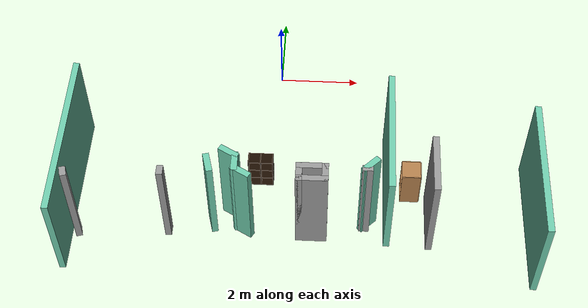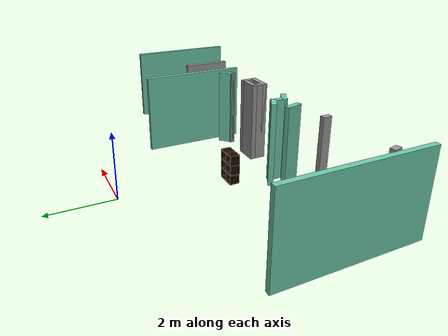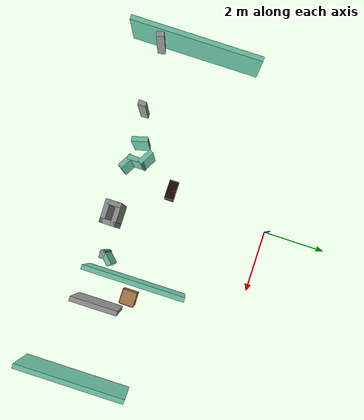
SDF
<sdf version="1.6">
 <world name="default">
  <model name="map_3">
   <pose>0.639107 -0.355311 0 0 -0 0</pose>
   <link name="Wall_125">
    <collision name="Wall_125_Collision">
     <geometry><box><size>0.5 0.15 2.5</size></box></geometry>
     <pose>0 0 1.25 0 -0 0</pose>
    </collision>
    <visual name="Wall_125_Visual">
     <pose>0 0 1.25 0 -0 0</pose>
     <geometry><box><size>0.5 0.15 2.5</size></box></geometry>
     <material>
      <script><uri>file://media/materials/scripts/gazebo.material</uri><name>Gazebo/Grey</name></script>
      <ambient>1 1 1 1</ambient>
     </material>
     <meta><layer>0</layer></meta>
    </visual>
    <pose>0.031075 -4.44181 0 0 -0 -1.5708</pose>
   </link>
   <link name="Wall_126">
    <collision name="Wall_126_Collision">
     <geometry><box><size>0.75 0.15 2.5</size></box></geometry>
     <pose>0 0 1.25 0 -0 0</pose>
    </collision>
    <visual name="Wall_126_Visual">
     <pose>0 0 1.25 0 -0 0</pose>
     <geometry><box><size>0.75 0.15 2.5</size></box></geometry>
     <material>
      <script><uri>file://media/materials/scripts/gazebo.material</uri><name>Gazebo/Grey</name></script>
      <ambient>1 1 1 1</ambient>
     </material>
     <meta><layer>0</layer></meta>
    </visual>
    <pose>0.331075 -4.61681 0 0 -0 0</pose>
   </link>
   <link name="Wall_127">
    <collision name="Wall_127_Collision">
     <geometry><box><size>0.5 0.15 2.5</size></box></geometry>
     <pose>0 0 1.25 0 -0 0</pose>
    </collision>
    <visual name="Wall_127_Visual">
     <pose>0 0 1.25 0 -0 0</pose>
     <geometry><box><size>0.5 0.15 2.5</size></box></geometry>
     <material>
      <script><uri>file://media/materials/scripts/gazebo.material</uri><name>Gazebo/Grey</name></script>
      <ambient>1 1 1 1</ambient>
     </material>
     <meta><layer>0</layer></meta>
    </visual>
    <pose>0.631075 -4.44181 0 0 -0 1.5708</pose>
   </link>
   <link name="Wall_128">
    <collision name="Wall_128_Collision">
     <geometry><box><size>0.75 0.15 2.5</size></box></geometry>
     <pose>0 0 1.25 0 -0 0</pose>
    </collision>
    <visual name="Wall_128_Visual">
     <pose>0 0 1.25 0 -0 0</pose>
     <geometry><box><size>0.75 0.15 2.5</size></box></geometry>
     <material>
      <script><uri>file://media/materials/scripts/gazebo.material</uri><name>Gazebo/Grey</name></script>
      <ambient>1 1 1 1</ambient>
     </material>
     <meta><layer>0</layer></meta>
    </visual>
    <pose>0.331075 -4.26681 0 0 -0 3.14159</pose>
   </link>
   <link name="Wall_130">
    <collision name="Wall_130_Collision">
     <geometry><box><size>1.5 0.15 2.5</size></box></geometry>
     <pose>0 0 1.25 0 -0 0</pose>
    </collision>
    <visual name="Wall_130_Visual">
     <pose>0 0 1.25 0 -0 0</pose>
     <geometry><box><size>1.5 0.15 2.5</size></box></geometry>
     <material>
      <script><uri>file://media/materials/scripts/gazebo.material</uri><name>Gazebo/Grey</name></script>
      <ambient>1 1 1 1</ambient>
     </material>
     <meta><layer>0</layer></meta>
    </visual>
    <pose>3.15108 -4.06181 0 0 -0 -1.5708</pose>
   </link>
   <link name="Wall_134">
    <collision name="Wall_134_Collision">
     <geometry><box><size>0.25 0.15 2.5</size></box></geometry>
     <pose>0 0 1.25 0 -0 0</pose>
    </collision>
    <visual name="Wall_134_Visual">
     <pose>0 0 1.25 0 -0 0</pose>
     <geometry><box><size>0.25 0.15 2.5</size></box></geometry>
     <material>
      <script><uri>file://media/materials/scripts/gazebo.material</uri><name>Gazebo/Grey</name></script>
      <ambient>1 1 1 1</ambient>
     </material>
     <meta><layer>0</layer></meta>
    </visual>
    <pose>-3.10893 -4.55681 0 0 -0 -1.5708</pose>
   </link>
   <link name="Wall_144">
    <collision name="Wall_144_Collision">
     <geometry><box><size>0.25 0.15 2.5</size></box></geometry>
     <pose>0 0 1.25 0 -0 0</pose>
    </collision>
    <visual name="Wall_144_Visual">
     <pose>0 0 1.25 0 -0 0</pose>
     <geometry><box><size>0.25 0.15 2.5</size></box></geometry>
     <material>
      <script><uri>file://media/materials/scripts/gazebo.material</uri><name>Gazebo/Grey</name></script>
      <ambient>1 1 1 1</ambient>
     </material>
     <meta><layer>0</layer></meta>
    </visual>
    <pose>-5.28923 -4.6894 0 0 -0 -1.309</pose>
   </link>
   <link name="Wall_62">
    <collision name="Wall_62_Collision">
     <geometry><box><size>4.25 0.15 2.5</size></box></geometry>
     <pose>0 0 1.25 0 -0 0</pose>
    </collision>
    <visual name="Wall_62_Visual">
     <pose>0 0 1.25 0 -0 0</pose>
     <geometry><box><size>4.25 0.15 2.5</size></box></geometry>
     <material>
      <script><uri>file://media/materials/scripts/gazebo.material</uri><name>Gazebo/Grey</name></script>
      <ambient>0.435294 0.796078 0.67451 1</ambient>
     </material>
     <meta><layer>0</layer></meta>
    </visual>
    <pose>-5.50979 -3.58401 0 0 -0 -1.5708</pose>
   </link>
   <link name="Wall_67">
    <collision name="Wall_67_Collision">
     <geometry><box><size>0.5 0.15 2.5</size></box></geometry>
     <pose>0 0 1.25 0 -0 0</pose>
    </collision>
    <visual name="Wall_67_Visual">
     <pose>0 0 1.25 0 -0 0</pose>
     <geometry><box><size>0.5 0.15 2.5</size></box></geometry>
     <material>
      <script><uri>file://media/materials/scripts/gazebo.material</uri><name>Gazebo/Grey</name></script>
      <ambient>0.435294 0.796078 0.67451 1</ambient>
     </material>
     <meta><layer>0</layer></meta>
    </visual>
    <pose>-2.05198 -4.28997 0 0 -0 1.8326</pose>
   </link>
   <link name="Wall_71">
    <collision name="Wall_71_Collision">
     <geometry><box><size>0.5 0.15 2.5</size></box></geometry>
     <pose>0 0 1.25 0 -0 0</pose>
    </collision>
    <visual name="Wall_71_Visual">
     <pose>0 0 1.25 0 -0 0</pose>
     <geometry><box><size>0.5 0.15 2.5</size></box></geometry>
     <material>
      <script><uri>file://media/materials/scripts/gazebo.material</uri><name>Gazebo/Grey</name></script>
      <ambient>0.435294 0.796078 0.67451 1</ambient>
     </material>
     <meta><layer>0</layer></meta>
    </visual>
    <pose>-1.59572 -3.95843 0 0 -0 -0.523599</pose>
   </link>
   <link name="Wall_72">
    <collision name="Wall_72_Collision">
     <geometry><box><size>0.5 0.15 2.5</size></box></geometry>
     <pose>0 0 1.25 0 -0 0</pose>
    </collision>
    <visual name="Wall_72_Visual">
     <pose>0 0 1.25 0 -0 0</pose>
     <geometry><box><size>0.5 0.15 2.5</size></box></geometry>
     <material>
      <script><uri>file://media/materials/scripts/gazebo.material</uri><name>Gazebo/Grey</name></script>
      <ambient>0.435294 0.796078 0.67451 1</ambient>
     </material>
     <meta><layer>0</layer></meta>
    </visual>
    <pose>-1.44416 -4.22093 0 0 -0 -1.5708</pose>
   </link>
   <link name="Wall_73">
    <collision name="Wall_73_Collision">
     <geometry><box><size>0.5 0.15 2.5</size></box></geometry>
     <pose>0 0 1.25 0 -0 0</pose>
    </collision>
    <visual name="Wall_73_Visual">
     <pose>0 0 1.25 0 -0 0</pose>
     <geometry><box><size>0.5 0.15 2.5</size></box></geometry>
     <material>
      <script><uri>file://media/materials/scripts/gazebo.material</uri><name>Gazebo/Grey</name></script>
      <ambient>0.435294 0.796078 0.67451 1</ambient>
     </material>
     <meta><layer>0</layer></meta>
    </visual>
    <pose>-1.29261 -4.48343 0 0 -0 -0.523599</pose>
   </link>
   <link name="Wall_82">
    <collision name="Wall_82_Collision">
     <geometry><box><size>0.25 0.15 2.5</size></box></geometry>
     <pose>0 0 1.25 0 -0 0</pose>
    </collision>
    <visual name="Wall_82_Visual">
     <pose>0 0 1.25 0 -0 0</pose>
     <geometry><box><size>0.25 0.15 2.5</size></box></geometry>
     <material>
      <script><uri>file://media/materials/scripts/gazebo.material</uri><name>Gazebo/Grey</name></script>
      <ambient>1 1 1 1</ambient>
     </material>
     <meta><layer>0</layer></meta>
    </visual>
    <pose>1.59273 -4.2877 0 0 -0 3.14159</pose>
   </link>
   <link name="Wall_83">
    <collision name="Wall_83_Collision">
     <geometry><box><size>0.5 0.15 2.5</size></box></geometry>
     <pose>0 0 1.25 0 -0 0</pose>
    </collision>
    <visual name="Wall_83_Visual">
     <pose>0 0 1.25 0 -0 0</pose>
     <geometry><box><size>0.5 0.15 2.5</size></box></geometry>
     <material>
      <script><uri>file://media/materials/scripts/gazebo.material</uri><name>Gazebo/Grey</name></script>
      <ambient>0.435294 0.796078 0.67451 1</ambient>
     </material>
     <meta><layer>0</layer></meta>
    </visual>
    <pose>1.66647 -4.16395 0 0 -0 0.785398</pose>
   </link>
   <link name="Wall_91">
    <collision name="Wall_91_Collision">
     <geometry><box><size>3.25 0.15 2.5</size></box></geometry>
     <pose>0 0 1.25 0 -0 0</pose>
    </collision>
    <visual name="Wall_91_Visual">
     <pose>0 0 1.25 0 -0 0</pose>
     <geometry><box><size>3.25 0.15 2.5</size></box></geometry>
     <material>
      <script><uri>file://media/materials/scripts/gazebo.material</uri><name>Gazebo/Grey</name></script>
      <ambient>0.435294 0.796078 0.67451 1</ambient>
     </material>
     <meta><layer>0</layer></meta>
    </visual>
    <pose>2.14022 -3.14021 0 0 -0 -1.5708</pose>
   </link>
   <link name="Wall_98">
    <collision name="Wall_98_Collision">
     <geometry><box><size>3.5 0.15 2.5</size></box></geometry>
     <pose>0 0 1.25 0 -0 0</pose>
    </collision>
    <visual name="Wall_98_Visual">
     <pose>0 0 1.25 0 -0 0</pose>
     <geometry><box><size>3.5 0.15 2.5</size></box></geometry>
     <material>
      <script><uri>file://media/materials/scripts/gazebo.material</uri><name>Gazebo/Grey</name></script>
      <ambient>0.435294 0.796078 0.67451 1</ambient>
     </material>
     <meta><layer>0</layer></meta>
    </visual>
    <pose>5.57626 -4.05239 0 0 -0 1.5708</pose>
   </link>
   <static>1</static>
  </model>
  <model name="6_Cube_StorageE_0">
   <link name="Wall_0">
    <pose>0 0 0.01 0 -0 0</pose>
    <inertial>
     <mass>1.6201</mass>
     <inertia><ixx>0.0119</ixx><iyy>0.0631</iyy><izz>0.0513</izz><ixy>0</ixy><ixz>0</ixz><iyz>0</iyz></inertia>
    </inertial>
    <collision name="Wall_0_Collision"><geometry><box><size>0.616 0.296 0.02</size></box></geometry></collision>
    <visual name="Wall_0_Visual">
     <geometry><box><size>0.616 0.296 0.02</size></box></geometry>
     <material>
      <script><uri>file://media/materials/scripts/gazebo.material</uri><name>Gazebo/Grey</name></script>
      <ambient>0.105882 0.0509804 0 1</ambient>
     </material>
    </visual>
   </link>
   <joint name="0_2" type="fixed">
    <pose>-0.308 0 0 0 -0 0</pose>
    <parent>Wall_2</parent>
    <child>Wall_0</child>
    <axis>
     <xyz>1 0 0</xyz>
     <use_parent_model_frame>0</use_parent_model_frame>
     <limit><lower>-1e+16</lower><upper>1e+16</upper></limit>
    </axis>
   </joint>
   <joint name="0_12" type="fixed">
    <parent>Wall_12</parent>
    <child>Wall_0</child>
    <axis>
     <xyz>0 0 1</xyz>
     <use_parent_model_frame>0</use_parent_model_frame>
     <limit><lower>-1e+16</lower><upper>1e+16</upper></limit>
    </axis>
   </joint>
   <joint name="0_4" type="fixed">
    <pose>0.308 0 0 0 -0 0</pose>
    <parent>Wall_4</parent>
    <child>Wall_0</child>
    <axis>
     <xyz>1 0 0</xyz>
     <use_parent_model_frame>0</use_parent_model_frame>
     <limit><lower>-1e+16</lower><upper>1e+16</upper></limit>
    </axis>
   </joint>
   <link name="Wall_10">
    <pose>0 0 0.61 0 -0 0</pose>
    <inertial>
     <mass>1.6201</mass>
     <inertia><ixx>0.0119</ixx><iyy>0.0631</iyy><izz>0.0513</izz><ixy>0</ixy><ixz>0</ixz><iyz>0</iyz></inertia>
    </inertial>
    <collision name="Wall_10_Collision"><geometry><box><size>0.616 0.296 0.02</size></box></geometry></collision>
    <visual name="Wall_10_Visual">
     <geometry><box><size>0.616 0.296 0.02</size></box></geometry>
     <material>
      <script><uri>file://media/materials/scripts/gazebo.material</uri><name>Gazebo/Grey</name></script>
      <ambient>0.105882 0.0509804 0 1</ambient>
     </material>
    </visual>
   </link>
   <joint name="10_2" type="fixed">
    <pose>-0.308 0 0 0 -0 0</pose>
    <parent>Wall_2</parent>
    <child>Wall_10</child>
    <axis>
     <xyz>1 0 0</xyz>
     <use_parent_model_frame>0</use_parent_model_frame>
     <limit><lower>-1e+16</lower><upper>1e+16</upper></limit>
    </axis>
   </joint>
   <joint name="10_12" type="fixed">
    <parent>Wall_12</parent>
    <child>Wall_10</child>
    <axis>
     <xyz>0 0 1</xyz>
     <use_parent_model_frame>0</use_parent_model_frame>
     <limit><lower>-1e+16</lower><upper>1e+16</upper></limit>
    </axis>
   </joint>
   <joint name="10_4" type="fixed">
    <pose>0.308 0 0 0 -0 0</pose>
    <parent>Wall_4</parent>
    <child>Wall_10</child>
    <axis>
     <xyz>1 0 0</xyz>
     <use_parent_model_frame>0</use_parent_model_frame>
     <limit><lower>-1e+16</lower><upper>1e+16</upper></limit>
    </axis>
   </joint>
   <link name="Wall_12">
    <pose>0 0 0.4575 0 -0 0</pose>
    <inertial>
     <mass>2.4065</mass>
     <inertia><ixx>0.0177</ixx><iyy>0.1855</iyy><izz>0.168</izz><ixy>0</ixy><ixz>0</ixz><iyz>0</iyz></inertia>
    </inertial>
    <collision name="Wall_12_Collision"><geometry><box><size>0.02 0.296 0.915</size></box></geometry></collision>
    <visual name="Wall_12_Visual">
     <geometry><box><size>0.02 0.296 0.915</size></box></geometry>
     <material>
      <script><uri>file://media/materials/scripts/gazebo.material</uri><name>Gazebo/Grey</name></script>
      <ambient>0.105882 0.0509804 0 1</ambient>
     </material>
    </visual>
   </link>
   <link name="Wall_2">
    <pose>-0.298 0 0.4575 0 -0 0</pose>
    <inertial>
     <mass>2.4065</mass>
     <inertia><ixx>0.0177</ixx><iyy>0.1855</iyy><izz>0.168</izz><ixy>0</ixy><ixz>0</ixz><iyz>0</iyz></inertia>
    </inertial>
    <collision name="Wall_2_Collision"><geometry><box><size>0.02 0.296 0.915</size></box></geometry></collision>
    <visual name="Wall_2_Visual">
     <geometry><box><size>0.02 0.296 0.915</size></box></geometry>
     <material>
      <script><uri>file://media/materials/scripts/gazebo.material</uri><name>Gazebo/Grey</name></script>
      <ambient>0.105882 0.0509804 0 1</ambient>
     </material>
    </visual>
   </link>
   <link name="Wall_4">
    <pose>0.298 0 0.4575 0 -0 0</pose>
    <inertial>
     <mass>2.4065</mass>
     <inertia><ixx>0.0177</ixx><iyy>0.1855</iyy><izz>0.168</izz><ixy>0</ixy><ixz>0</ixz><iyz>0</iyz></inertia>
    </inertial>
    <collision name="Wall_4_Collision"><geometry><box><size>0.02 0.296 0.915</size></box></geometry></collision>
    <visual name="Wall_4_Visual">
     <geometry><box><size>0.02 0.296 0.915</size></box></geometry>
     <material>
      <script><uri>file://media/materials/scripts/gazebo.material</uri><name>Gazebo/Grey</name></script>
      <ambient>0.105882 0.0509804 0 1</ambient>
     </material>
    </visual>
   </link>
   <link name="Wall_6">
    <pose>0 0 0.905 0 -0 0</pose>
    <inertial>
     <mass>1.6201</mass>
     <inertia><ixx>0.0119</ixx><iyy>0.0631</iyy><izz>0.0513</izz><ixy>0</ixy><ixz>0</ixz><iyz>0</iyz></inertia>
    </inertial>
    <collision name="Wall_6_Collision"><geometry><box><size>0.616 0.296 0.02</size></box></geometry></collision>
    <visual name="Wall_6_Visual">
     <geometry><box><size>0.616 0.296 0.02</size></box></geometry>
     <material>
      <script><uri>file://media/materials/scripts/gazebo.material</uri><name>Gazebo/Grey</name></script>
      <ambient>0.105882 0.0509804 0 1</ambient>
     </material>
    </visual>
   </link>
   <joint name="6_2" type="fixed">
    <pose>-0.308 0 0 0 -0 0</pose>
    <parent>Wall_2</parent>
    <child>Wall_6</child>
    <axis>
     <xyz>2 0 0</xyz>
     <use_parent_model_frame>0</use_parent_model_frame>
     <limit><lower>-1e+16</lower><upper>1e+16</upper></limit>
    </axis>
   </joint>
   <joint name="6_12" type="fixed">
    <parent>Wall_12</parent>
    <child>Wall_6</child>
    <axis>
     <xyz>0 0 1</xyz>
     <use_parent_model_frame>0</use_parent_model_frame>
     <limit><lower>-1e+16</lower><upper>1e+16</upper></limit>
    </axis>
   </joint>
   <joint name="6_4" type="fixed">
    <pose>0.308 0 0 0 -0 0</pose>
    <parent>Wall_4</parent>
    <child>Wall_6</child>
    <axis>
     <xyz>1 0 0</xyz>
     <use_parent_model_frame>0</use_parent_model_frame>
     <limit><lower>-1e+16</lower><upper>1e+16</upper></limit>
    </axis>
   </joint>
   <link name="Wall_8">
    <pose>0 0 0.305 0 -0 0</pose>
    <inertial>
     <mass>1.6201</mass>
     <inertia><ixx>0.0119</ixx><iyy>0.0631</iyy><izz>0.0513</izz><ixy>0</ixy><ixz>0</ixz><iyz>0</iyz></inertia>
    </inertial>
    <collision name="Wall_8_Collision"><geometry><box><size>0.616 0.296 0.02</size></box></geometry></collision>
    <visual name="Wall_8_Visual">
     <geometry><box><size>0.616 0.296 0.02</size></box></geometry>
     <material>
      <script><uri>file://media/materials/scripts/gazebo.material</uri><name>Gazebo/Grey</name></script>
      <ambient>0.105882 0.0509804 0 1</ambient>
     </material>
    </visual>
   </link>
   <joint name="8_2" type="fixed">
    <pose>-0.308 0 0 0 -0 0</pose>
    <parent>Wall_2</parent>
    <child>Wall_8</child>
    <axis>
     <xyz>1 0 0</xyz>
     <use_parent_model_frame>0</use_parent_model_frame>
     <limit><lower>-1e+16</lower><upper>1e+16</upper></limit>
    </axis>
   </joint>
   <joint name="8_12" type="fixed">
    <parent>Wall_12</parent>
    <child>Wall_8</child>
    <axis>
     <xyz>0 0 1</xyz>
     <use_parent_model_frame>0</use_parent_model_frame>
     <limit><lower>-1e+16</lower><upper>1e+16</upper></limit>
    </axis>
   </joint>
   <joint name="8_4" type="fixed">
    <pose>0.308 0 0 0 -0 0</pose>
    <parent>Wall_4</parent>
    <child>Wall_8</child>
    <axis>
     <xyz>1 0 0</xyz>
     <use_parent_model_frame>0</use_parent_model_frame>
     <limit><lower>-1e+16</lower><upper>1e+16</upper></limit>
    </axis>
   </joint>
   <static>1</static>
   <pose>-0.333463 -3.30215 0 0 -0 0</pose>
  </model>
  <model name="cabinet_3">
   <static>1</static>
   <link name="cabinet_bottom_plate">
    <inertial>
     <pose>0 0 -1 0 -0 0</pose>
     <inertia><ixx>2.05</ixx><ixy>0</ixy><ixz>0</ixz><iyy>2.05</iyy><iyz>0</iyz><izz>2.05</izz></inertia>
     <mass>25</mass>
    </inertial>
    <collision name="cabinet_bottom_plate_geom">
     <pose>0 0 0.01 0 -0 0</pose>
     <geometry><box><size>0.45 0.45 0.02</size></box></geometry>
    </collision>
    <visual name="cabinet_bottom_plate_geom_visual">
     <pose>0 0 0.01 0 -0 0</pose>
     <geometry><box><size>0.45 0.45 0.02</size></box></geometry>
     <material>
      <script><uri>file://media/materials/scripts/gazebo.material</uri><name>Gazebo/Wood</name></script>
     </material>
    </visual>
    <collision name="cabinet_bottom_plate_geom_cabinet_back_plate">
     <pose>0.235 0 0.51 0 -0 0</pose>
     <geometry><box><size>0.02 0.45 1.02</size></box></geometry>
    </collision>
    <visual name="cabinet_bottom_plate_geom_cabinet_back_plate_visual">
     <pose>0.235 0 0.51 0 -0 0</pose>
     <geometry><box><size>0.02 0.45 1.02</size></box></geometry>
     <material>
      <script><uri>file://media/materials/scripts/gazebo.material</uri><name>Gazebo/Wood</name></script>
     </material>
    </visual>
    <collision name="cabinet_bottom_plate_geom_cabinet_left_plate">
     <pose>0 0.235 0.51 0 -0 0</pose>
     <geometry><box><size>0.45 0.02 1.02</size></box></geometry>
    </collision>
    <visual name="cabinet_bottom_plate_geom_cabinet_left_plate_visual">
     <pose>0 0.235 0.51 0 -0 0</pose>
     <geometry><box><size>0.45 0.02 1.02</size></box></geometry>
     <material>
      <script><uri>file://media/materials/scripts/gazebo.material</uri><name>Gazebo/Wood</name></script>
     </material>
    </visual>
    <collision name="cabinet_bottom_plate_geom_cabinet_middle_plate">
     <pose>0 0 0.51 0 -0 0</pose>
     <geometry><box><size>0.45 0.45 0.02</size></box></geometry>
    </collision>
    <visual name="cabinet_bottom_plate_geom_cabinet_middle_plate_visual">
     <pose>0 0 0.51 0 -0 0</pose>
     <geometry><box><size>0.45 0.45 0.02</size></box></geometry>
     <material>
      <script><uri>file://media/materials/scripts/gazebo.material</uri><name>Gazebo/Wood</name></script>
     </material>
    </visual>
    <collision name="cabinet_bottom_plate_geom_cabinet_right_plate">
     <pose>0 -0.235 0.51 0 -0 0</pose>
     <geometry><box><size>0.45 0.02 1.02</size></box></geometry>
    </collision>
    <visual name="cabinet_bottom_plate_geom_cabinet_right_plate_visual">
     <pose>0 -0.235 0.51 0 -0 0</pose>
     <geometry><box><size>0.45 0.02 1.02</size></box></geometry>
     <material>
      <script><uri>file://media/materials/scripts/gazebo.material</uri><name>Gazebo/Wood</name></script>
     </material>
    </visual>
    <collision name="cabinet_bottom_plate_geom_cabinet_top_plate">
     <pose>0 0 1.01 0 -0 0</pose>
     <geometry><box><size>0.45 0.45 0.02</size></box></geometry>
    </collision>
    <visual name="cabinet_bottom_plate_geom_cabinet_top_plate_visual">
     <pose>0 0 1.01 0 -0 0</pose>
     <geometry><box><size>0.45 0.45 0.02</size></box></geometry>
     <material>
      <script><uri>file://media/materials/scripts/gazebo.material</uri><name>Gazebo/Wood</name></script>
     </material>
    </visual>
   </link>
   <pose>3.33786 -3.55276 0 0 -0 0</pose>
  </model>
 </world>
</sdf>
